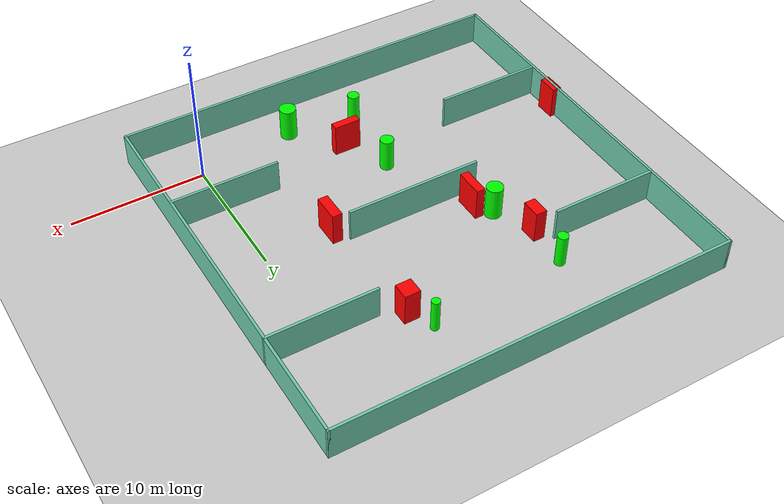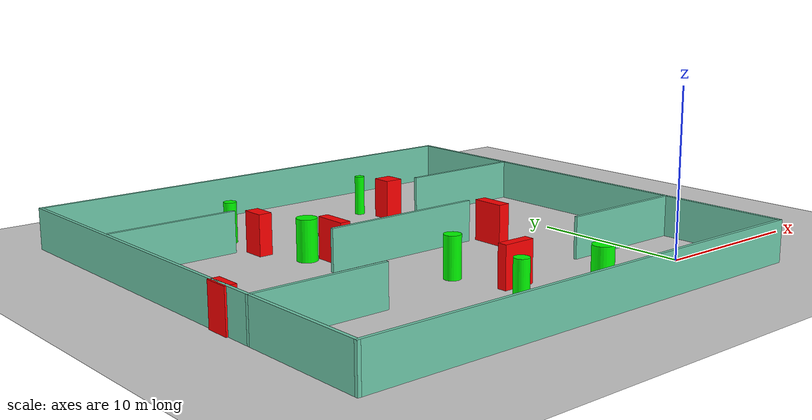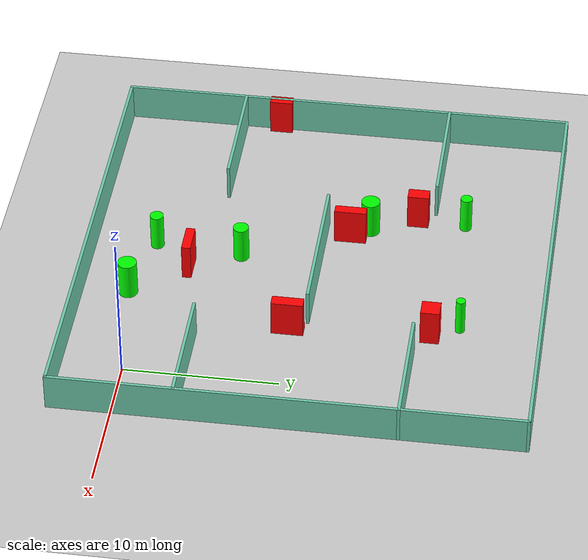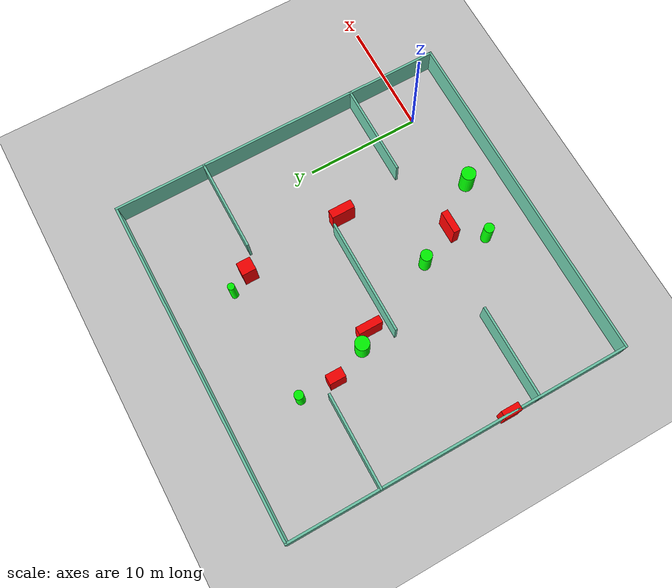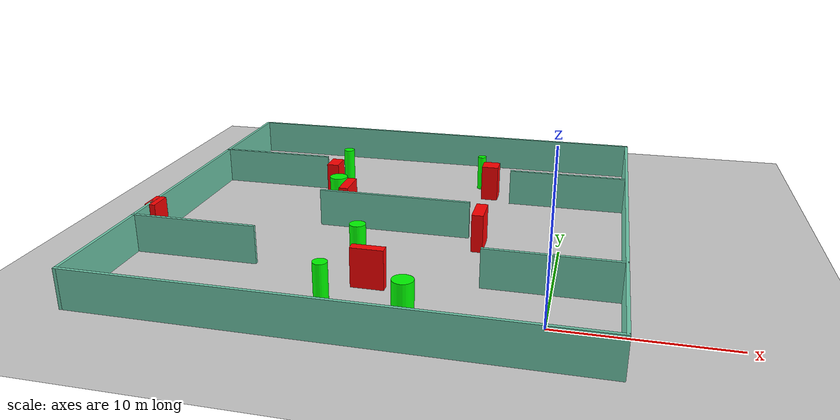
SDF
<sdf version="1.7">
 <world name="default">
  <light name="sun" type="directional">
   <pose>0 0 10 0 -0 0</pose>
   <diffuse>0.8 0.8 0.8 1</diffuse>
   <specular>0.2 0.2 0.2 1</specular>
   <attenuation>
    <range>1000</range>
    <constant>0.9</constant>
    <linear>0.01</linear>
    <quadratic>0.001</quadratic>
   </attenuation>
   <direction>-0.5 0.1 -0.9</direction>
   <spot><inner_angle>0</inner_angle><outer_angle>0</outer_angle><falloff>0</falloff></spot>
  </light>
  <model name="ground_plane">
   <static>1</static>
   <link name="link">
    <collision name="collision">
     <geometry><plane><normal>0 0 1</normal><size>100 100</size></plane></geometry>
     <surface>
      <contact><collide_bitmask>65535</collide_bitmask></contact>
      <friction><ode><mu>100</mu><mu2>50</mu2></ode></friction>
     </surface>
    </collision>
    <visual name="visual">
     <cast_shadows>0</cast_shadows>
     <geometry><plane><normal>0 0 1</normal><size>100 100</size></plane></geometry>
     <material>
      <script><uri>file://media/materials/scripts/gazebo.material</uri><name>Gazebo/Grey</name></script>
     </material>
    </visual>
   </link>
  </model>
  <gravity>0 0 -9.8</gravity>
  <magnetic_field>6e-06 2.3e-05 -4.2e-05</magnetic_field>
  <atmosphere type="adiabatic"/>
  <physics type="ode">
   <max_step_size>0.001</max_step_size>
   <real_time_factor>1</real_time_factor>
   <real_time_update_rate>1000</real_time_update_rate>
  </physics>
  <scene><ambient>0.4 0.4 0.4 1</ambient><background>0.7 0.7 0.7 1</background><shadows>1</shadows></scene>
  <spherical_coordinates>
   <surface_model>EARTH_WGS84</surface_model>
   <latitude_deg>0</latitude_deg>
   <longitude_deg>0</longitude_deg>
   <elevation>0</elevation>
   <heading_deg>0</heading_deg>
  </spherical_coordinates>
  <model name="my_base_walls">
   <link name="Wall_10">
    <collision name="Wall_10_Collision">
     <geometry><box><size>8.2 0.2 2.5</size></box></geometry>
     <pose>0 0 1.25 0 -0 0</pose>
    </collision>
    <visual name="Wall_10_Visual">
     <pose>0 0 1.25 0 -0 0</pose>
     <geometry><box><size>8.2 0.2 2.5</size></box></geometry>
     <material>
      <script><uri>file://media/materials/scripts/gazebo.material</uri><name>Gazebo/Grey</name></script>
      <ambient>0.435294 0.796078 0.67451 1</ambient>
     </material>
     <meta><layer>0</layer></meta>
    </visual>
    <pose>-11 -7 0 0 -0 0</pose>
   </link>
   <link name="Wall_12">
    <collision name="Wall_12_Collision">
     <geometry><box><size>8.2 0.2 2.5</size></box></geometry>
     <pose>0 0 1.25 0 -0 0</pose>
    </collision>
    <visual name="Wall_12_Visual">
     <pose>0 0 1.25 0 -0 0</pose>
     <geometry><box><size>8.2 0.2 2.5</size></box></geometry>
     <material>
      <script><uri>file://media/materials/scripts/gazebo.material</uri><name>Gazebo/Grey</name></script>
      <ambient>0.435294 0.796078 0.67451 1</ambient>
     </material>
     <meta><layer>0</layer></meta>
    </visual>
    <pose>-11 7 0 0 -0 0</pose>
   </link>
   <link name="Wall_14">
    <collision name="Wall_14_Collision">
     <geometry><box><size>8.2 0.2 2.5</size></box></geometry>
     <pose>0 0 1.25 0 -0 0</pose>
    </collision>
    <visual name="Wall_14_Visual">
     <pose>0 0 1.25 0 -0 0</pose>
     <geometry><box><size>8.2 0.2 2.5</size></box></geometry>
     <material>
      <script><uri>file://media/materials/scripts/gazebo.material</uri><name>Gazebo/Grey</name></script>
      <ambient>0.435294 0.796078 0.67451 1</ambient>
     </material>
     <meta><layer>0</layer></meta>
    </visual>
    <pose>11 7 0 0 -0 3.14159</pose>
   </link>
   <link name="Wall_16">
    <collision name="Wall_16_Collision">
     <geometry><box><size>10.2 0.2 2.5</size></box></geometry>
     <pose>0 0 1.25 0 -0 0</pose>
    </collision>
    <visual name="Wall_16_Visual">
     <pose>0 0 1.25 0 -0 0</pose>
     <geometry><box><size>10.2 0.2 2.5</size></box></geometry>
     <material>
      <script><uri>file://media/materials/scripts/gazebo.material</uri><name>Gazebo/Grey</name></script>
      <ambient>0.435294 0.796078 0.67451 1</ambient>
     </material>
     <meta><layer>0</layer></meta>
    </visual>
    <pose>0 0 0 0 -0 3.14159</pose>
   </link>
   <link name="Wall_2">
    <collision name="Wall_2_Collision">
     <geometry><box><size>30.2 0.2 2.5</size></box></geometry>
     <pose>0 0 1.25 0 -0 0</pose>
    </collision>
    <visual name="Wall_2_Visual">
     <pose>0 0 1.25 0 -0 0</pose>
     <geometry><box><size>30.2 0.2 2.5</size></box></geometry>
     <material>
      <script><uri>file://media/materials/scripts/gazebo.material</uri><name>Gazebo/Grey</name></script>
      <ambient>0.435294 0.796078 0.67451 1</ambient>
     </material>
     <meta><layer>0</layer></meta>
    </visual>
    <pose>0 -15 0 0 -0 3.14159</pose>
   </link>
   <link name="Wall_3">
    <collision name="Wall_3_Collision">
     <geometry><box><size>30.2 0.2 2.5</size></box></geometry>
     <pose>0 0 1.25 0 -0 0</pose>
    </collision>
    <visual name="Wall_3_Visual">
     <pose>0 0 1.25 0 -0 0</pose>
     <geometry><box><size>30.2 0.2 2.5</size></box></geometry>
     <material>
      <script><uri>file://media/materials/scripts/gazebo.material</uri><name>Gazebo/Grey</name></script>
      <ambient>0.435294 0.796078 0.67451 1</ambient>
     </material>
     <meta><layer>0</layer></meta>
    </visual>
    <pose>-15 0 0 0 -0 1.5708</pose>
   </link>
   <link name="Wall_4">
    <collision name="Wall_4_Collision">
     <geometry><box><size>30.2 0.2 2.5</size></box></geometry>
     <pose>0 0 1.25 0 -0 0</pose>
    </collision>
    <visual name="Wall_4_Visual">
     <pose>0 0 1.25 0 -0 0</pose>
     <geometry><box><size>30.2 0.2 2.5</size></box></geometry>
     <material>
      <script><uri>file://media/materials/scripts/gazebo.material</uri><name>Gazebo/Grey</name></script>
      <ambient>0.435294 0.796078 0.67451 1</ambient>
     </material>
     <meta><layer>0</layer></meta>
    </visual>
    <pose>0 15 0 0 -0 0</pose>
   </link>
   <link name="Wall_6">
    <collision name="Wall_6_Collision">
     <geometry><box><size>30.2 0.2 2.5</size></box></geometry>
     <pose>0 0 1.25 0 -0 0</pose>
    </collision>
    <visual name="Wall_6_Visual">
     <pose>0 0 1.25 0 -0 0</pose>
     <geometry><box><size>30.2 0.2 2.5</size></box></geometry>
     <material>
      <script><uri>file://media/materials/scripts/gazebo.material</uri><name>Gazebo/Grey</name></script>
      <ambient>0.435294 0.796078 0.67451 1</ambient>
     </material>
     <meta><layer>0</layer></meta>
    </visual>
    <pose>15 0 0 0 -0 1.5708</pose>
   </link>
   <link name="Wall_8">
    <collision name="Wall_8_Collision">
     <geometry><box><size>8.2 0.2 2.5</size></box></geometry>
     <pose>0 0 1.25 0 -0 0</pose>
    </collision>
    <visual name="Wall_8_Visual">
     <pose>0 0 1.25 0 -0 0</pose>
     <geometry><box><size>8.2 0.2 2.5</size></box></geometry>
     <material>
      <script><uri>file://media/materials/scripts/gazebo.material</uri><name>Gazebo/Grey</name></script>
      <ambient>0.435294 0.796078 0.67451 1</ambient>
     </material>
     <meta><layer>0</layer></meta>
    </visual>
    <pose>11 -7 0 0 -0 3.14159</pose>
   </link>
   <static>1</static>
   <pose>-11 11 0 0 -0 0</pose>
  </model>
  <model name="cylinder1">
   <static>1</static>
   <link name="link">
    <inertial>
     <mass>1</mass>
     <inertia><ixx>0.5</ixx><ixy>0</ixy><ixz>0</ixz><iyy>0.5</iyy><iyz>0</iyz><izz>1</izz></inertia>
    </inertial>
    <collision name="collision">
     <geometry><cylinder><radius>0.30360265647987894</radius><length>2.5</length></cylinder></geometry>
    </collision>
    <visual name="visual">
     <geometry><cylinder><radius>0.30360265647987894</radius><length>2.5</length></cylinder></geometry>
     <material>
      <ambient>0 1 0 1</ambient>
      <diffuse>0 1 0 1</diffuse>
      <specular>0.1 0.1 0.1 1</specular>
      <emissive>0 0 0 0</emissive>
     </material>
    </visual>
   </link>
   <pose>-6.572573570726396 20.741305419560195 1.25 0 0 0</pose>
  </model>
  <model name="cylinder2">
   <static>1</static>
   <link name="link">
    <inertial>
     <mass>1</mass>
     <inertia><ixx>0.5</ixx><ixy>0</ixy><ixz>0</ixz><iyy>0.5</iyy><iyz>0</iyz><izz>1</izz></inertia>
    </inertial>
    <collision name="collision">
     <geometry><cylinder><radius>0.5064253986702514</radius><length>2.5</length></cylinder></geometry>
    </collision>
    <visual name="visual">
     <geometry><cylinder><radius>0.5064253986702514</radius><length>2.5</length></cylinder></geometry>
     <material>
      <ambient>0 1 0 1</ambient>
      <diffuse>0 1 0 1</diffuse>
      <specular>0.1 0.1 0.1 1</specular>
      <emissive>0 0 0 0</emissive>
     </material>
    </visual>
   </link>
   <pose>-11.93022377792095 5.78489418535721 1.25 0 0 0</pose>
  </model>
  <model name="cylinder3">
   <static>1</static>
   <link name="link">
    <inertial>
     <mass>1</mass>
     <inertia><ixx>0.5</ixx><ixy>0</ixy><ixz>0</ixz><iyy>0.5</iyy><iyz>0</iyz><izz>1</izz></inertia>
    </inertial>
    <collision name="collision">
     <geometry><cylinder><radius>0.6159757570015969</radius><length>2.5</length></cylinder></geometry>
    </collision>
    <visual name="visual">
     <geometry><cylinder><radius>0.6159757570015969</radius><length>2.5</length></cylinder></geometry>
     <material>
      <ambient>0 1 0 1</ambient>
      <diffuse>0 1 0 1</diffuse>
      <specular>0.1 0.1 0.1 1</specular>
      <emissive>0 0 0 0</emissive>
     </material>
    </visual>
   </link>
   <pose>-15.72134936088085 13.858119044636446 1.25 0 0 0</pose>
  </model>
  <model name="cylinder4">
   <static>1</static>
   <link name="link">
    <inertial>
     <mass>1</mass>
     <inertia><ixx>0.5</ixx><ixy>0</ixy><ixz>0</ixz><iyy>0.5</iyy><iyz>0</iyz><izz>1</izz></inertia>
    </inertial>
    <collision name="collision">
     <geometry><cylinder><radius>0.6216025044894427</radius><length>2.5</length></cylinder></geometry>
    </collision>
    <visual name="visual">
     <geometry><cylinder><radius>0.6216025044894427</radius><length>2.5</length></cylinder></geometry>
     <material>
      <ambient>0 1 0 1</ambient>
      <diffuse>0 1 0 1</diffuse>
      <specular>0.1 0.1 0.1 1</specular>
      <emissive>0 0 0 0</emissive>
     </material>
    </visual>
   </link>
   <pose>-7.448400588764811 -0.9444411146734577 1.25 0 0 0</pose>
  </model>
  <model name="cylinder5">
   <static>1</static>
   <link name="link">
    <inertial>
     <mass>1</mass>
     <inertia><ixx>0.5</ixx><ixy>0</ixy><ixz>0</ixz><iyy>0.5</iyy><iyz>0</iyz><izz>1</izz></inertia>
    </inertial>
    <collision name="collision">
     <geometry><cylinder><radius>0.44099090795297147</radius><length>2.5</length></cylinder></geometry>
    </collision>
    <visual name="visual">
     <geometry><cylinder><radius>0.44099090795297147</radius><length>2.5</length></cylinder></geometry>
     <material>
      <ambient>0 1 0 1</ambient>
      <diffuse>0 1 0 1</diffuse>
      <specular>0.1 0.1 0.1 1</specular>
      <emissive>0 0 0 0</emissive>
     </material>
    </visual>
   </link>
   <pose>-12.3950204508605 0.11999363504017291 1.25 0 0 0</pose>
  </model>
  <model name="cylinder6">
   <static>1</static>
   <link name="link">
    <inertial>
     <mass>1</mass>
     <inertia><ixx>0.5</ixx><ixy>0</ixy><ixz>0</ixz><iyy>0.5</iyy><iyz>0</iyz><izz>1</izz></inertia>
    </inertial>
    <collision name="collision">
     <geometry><cylinder><radius>0.38908498477201614</radius><length>2.5</length></cylinder></geometry>
    </collision>
    <visual name="visual">
     <geometry><cylinder><radius>0.38908498477201614</radius><length>2.5</length></cylinder></geometry>
     <material>
      <ambient>0 1 0 1</ambient>
      <diffuse>0 1 0 1</diffuse>
      <specular>0.1 0.1 0.1 1</specular>
      <emissive>0 0 0 0</emissive>
     </material>
    </visual>
   </link>
   <pose>-16.87533141779595 20.079152578856682 1.25 0 0 0</pose>
  </model>
  <model name="box1">
   <static>1</static>
   <link name="link">
    <inertial>
     <mass>1</mass>
     <inertia><ixx>0.083</ixx><ixy>0</ixy><ixz>0</ixz><iyy>0.083</iyy><iyz>0</iyz><izz>0.083</izz></inertia>
    </inertial>
    <collision name="collision">
     <geometry><box><size>0.6908286015344544 1.5237144373136577 2.5</size></box></geometry>
    </collision>
    <visual name="visual">
     <geometry><box><size>0.6908286015344544 1.5237144373136577 2.5</size></box></geometry>
     <material>
      <ambient>1 0 0 1</ambient>
      <diffuse>1 0 0 1</diffuse>
      <specular>0.1 0.1 0.1 1</specular>
      <emissive>0 0 0 0</emissive>
     </material>
    </visual>
    <sensor name="my_contact" type="contact">
     <contact><collision>box_collision</collision><topic>__default_topic__</topic></contact>
    </sensor>
   </link>
   <pose>-25.86461382679952 6.45739770764618 1.25 0 0 0</pose>
  </model>
  <model name="box2">
   <static>1</static>
   <link name="link">
    <inertial>
     <mass>1</mass>
     <inertia><ixx>0.083</ixx><ixy>0</ixy><ixz>0</ixz><iyy>0.083</iyy><iyz>0</iyz><izz>0.083</izz></inertia>
    </inertial>
    <collision name="collision">
     <geometry><box><size>0.7420698746962998 2.062657065275974 2.5</size></box></geometry>
    </collision>
    <visual name="visual">
     <geometry><box><size>0.7420698746962998 2.062657065275974 2.5</size></box></geometry>
     <material>
      <ambient>1 0 0 1</ambient>
      <diffuse>1 0 0 1</diffuse>
      <specular>0.1 0.1 0.1 1</specular>
      <emissive>0 0 0 0</emissive>
     </material>
    </visual>
    <sensor name="my_contact" type="contact">
     <contact><collision>box_collision</collision><topic>__default_topic__</topic></contact>
    </sensor>
   </link>
   <pose>-5.05000792166237 9.839035286562105 1.25 0 0 0</pose>
  </model>
  <model name="box3">
   <static>1</static>
   <link name="link">
    <inertial>
     <mass>1</mass>
     <inertia><ixx>0.083</ixx><ixy>0</ixy><ixz>0</ixz><iyy>0.083</iyy><iyz>0</iyz><izz>0.083</izz></inertia>
    </inertial>
    <collision name="collision">
     <geometry><box><size>2.020212554313187 0.5969324835089465 2.5</size></box></geometry>
    </collision>
    <visual name="visual">
     <geometry><box><size>2.020212554313187 0.5969324835089465 2.5</size></box></geometry>
     <material>
      <ambient>1 0 0 1</ambient>
      <diffuse>1 0 0 1</diffuse>
      <specular>0.1 0.1 0.1 1</specular>
      <emissive>0 0 0 0</emissive>
     </material>
    </visual>
    <sensor name="my_contact" type="contact">
     <contact><collision>box_collision</collision><topic>__default_topic__</topic></contact>
    </sensor>
   </link>
   <pose>-10.369676941741895 2.5620787222670867 1.25 0 0 0</pose>
  </model>
  <model name="box4">
   <static>1</static>
   <link name="link">
    <inertial>
     <mass>1</mass>
     <inertia><ixx>0.083</ixx><ixy>0</ixy><ixz>0</ixz><iyy>0.083</iyy><iyz>0</iyz><izz>0.083</izz></inertia>
    </inertial>
    <collision name="collision">
     <geometry><box><size>0.8486310315890085 1.4118875847966221 2.5</size></box></geometry>
    </collision>
    <visual name="visual">
     <geometry><box><size>0.8486310315890085 1.4118875847966221 2.5</size></box></geometry>
     <material>
      <ambient>1 0 0 1</ambient>
      <diffuse>1 0 0 1</diffuse>
      <specular>0.1 0.1 0.1 1</specular>
      <emissive>0 0 0 0</emissive>
     </material>
    </visual>
    <sensor name="my_contact" type="contact">
     <contact><collision>box_collision</collision><topic>__default_topic__</topic></contact>
    </sensor>
   </link>
   <pose>-16.95059437267775 16.908740753066247 1.25 0 0 0</pose>
  </model>
  <model name="box5">
   <static>1</static>
   <link name="link">
    <inertial>
     <mass>1</mass>
     <inertia><ixx>0.083</ixx><ixy>0</ixy><ixz>0</ixz><iyy>0.083</iyy><iyz>0</iyz><izz>0.083</izz></inertia>
    </inertial>
    <collision name="collision">
     <geometry><box><size>1.1607690853316441 1.2261259739023793 2.5</size></box></geometry>
    </collision>
    <visual name="visual">
     <geometry><box><size>1.1607690853316441 1.2261259739023793 2.5</size></box></geometry>
     <material>
      <ambient>1 0 0 1</ambient>
      <diffuse>1 0 0 1</diffuse>
      <specular>0.1 0.1 0.1 1</specular>
      <emissive>0 0 0 0</emissive>
     </material>
    </visual>
    <sensor name="my_contact" type="contact">
     <contact><collision>box_collision</collision><topic>__default_topic__</topic></contact>
    </sensor>
   </link>
   <pose>-5.641189263169597 18.927840159238905 1.25 0 0 0</pose>
  </model>
  <model name="box6">
   <static>1</static>
   <link name="link">
    <inertial>
     <mass>1</mass>
     <inertia><ixx>0.083</ixx><ixy>0</ixy><ixz>0</ixz><iyy>0.083</iyy><iyz>0</iyz><izz>0.083</izz></inertia>
    </inertial>
    <collision name="collision">
     <geometry><box><size>0.6438706713465416 2.0946223864045748 2.5</size></box></geometry>
    </collision>
    <visual name="visual">
     <geometry><box><size>0.6438706713465416 2.0946223864045748 2.5</size></box></geometry>
     <material>
      <ambient>1 0 0 1</ambient>
      <diffuse>1 0 0 1</diffuse>
      <specular>0.1 0.1 0.1 1</specular>
      <emissive>0 0 0 0</emissive>
     </material>
    </visual>
    <sensor name="my_contact" type="contact">
     <contact><collision>box_collision</collision><topic>__default_topic__</topic></contact>
    </sensor>
   </link>
   <pose>-14.690716193858416 12.656100052886902 1.25 0 0 0</pose>
  </model>
 </world>
</sdf>
